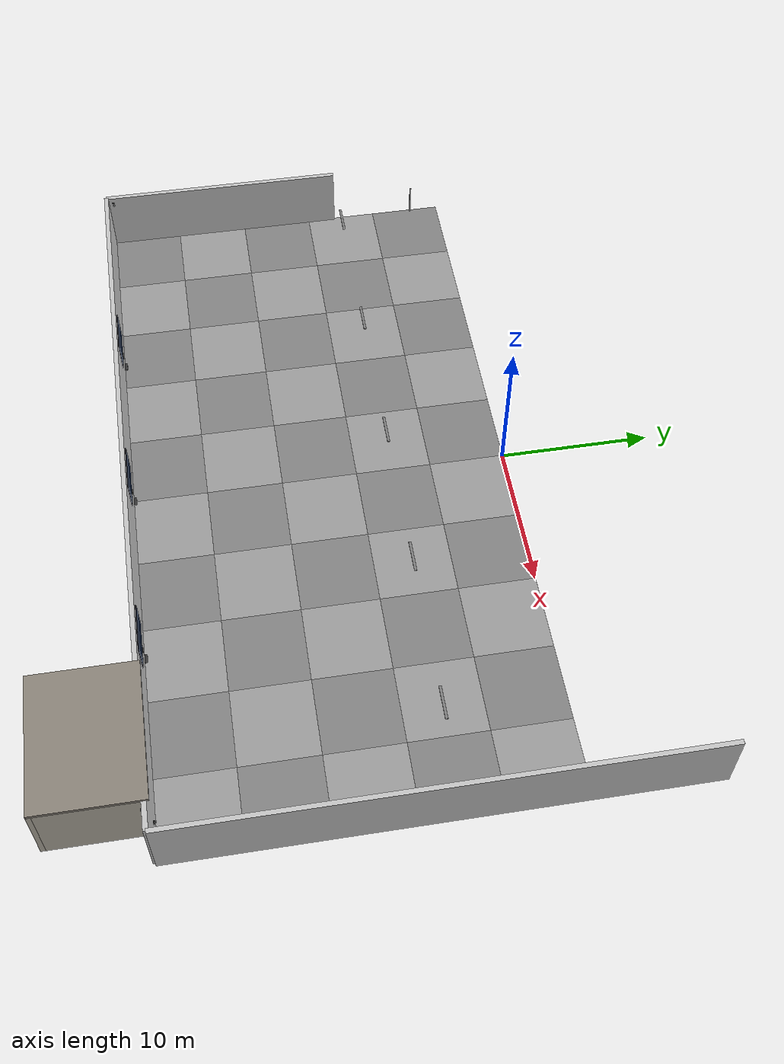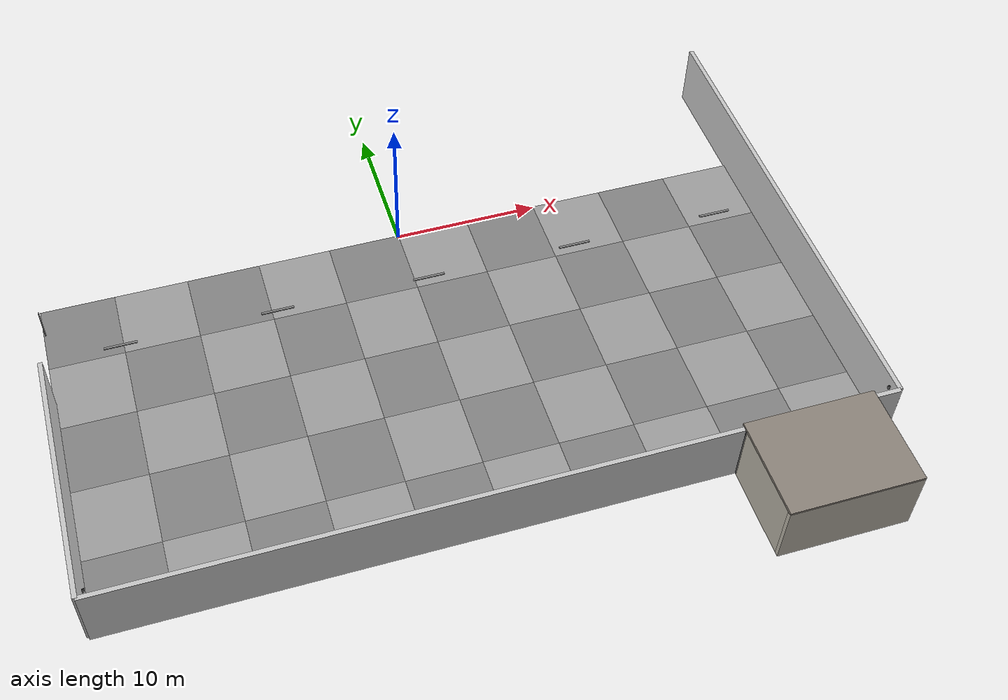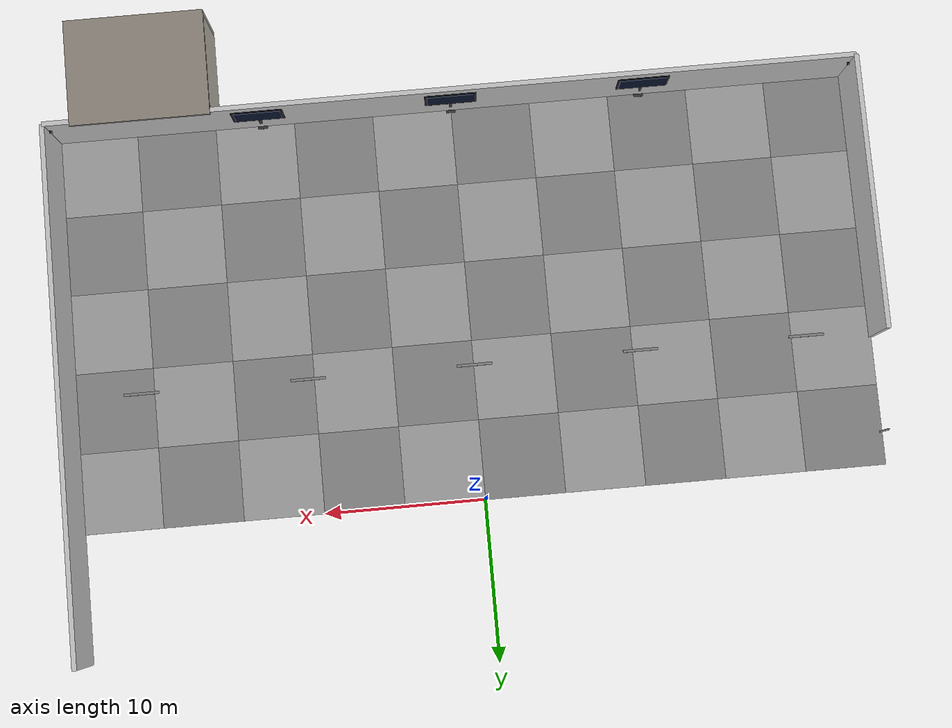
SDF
<sdf version="1.10">
 <world name="my_world">
  <model name="tile_0_0">
   <static>true</static>
   <pose>-22.5 -22.5 0.05 0 0 0</pose>
   <link name="link">
    <collision name="col">
     <geometry><box><size>5 5 0.1</size></box></geometry>
     <surface><friction><ode><mu>0.8</mu><mu2>0.8</mu2></ode></friction></surface>
    </collision>
    <visual name="vis">
     <geometry><box><size>5 5 0.1</size></box></geometry>
     <material><ambient>0.52 0.52 0.52 1</ambient><diffuse>0.52 0.52 0.52 1</diffuse></material>
    </visual>
   </link>
  </model>
  <model name="tile_0_1">
   <static>true</static>
   <pose>-22.5 -17.5 0.05 0 0 0</pose>
   <link name="link">
    <collision name="col">
     <geometry><box><size>5 5 0.1</size></box></geometry>
     <surface><friction><ode><mu>0.8</mu><mu2>0.8</mu2></ode></friction></surface>
    </collision>
    <visual name="vis">
     <geometry><box><size>5 5 0.1</size></box></geometry>
     <material><ambient>0.62 0.62 0.62 1</ambient><diffuse>0.62 0.62 0.62 1</diffuse></material>
    </visual>
   </link>
  </model>
  <model name="tile_0_2">
   <static>true</static>
   <pose>-22.5 -12.5 0.05 0 0 0</pose>
   <link name="link">
    <collision name="col">
     <geometry><box><size>5 5 0.1</size></box></geometry>
     <surface><friction><ode><mu>0.8</mu><mu2>0.8</mu2></ode></friction></surface>
    </collision>
    <visual name="vis">
     <geometry><box><size>5 5 0.1</size></box></geometry>
     <material><ambient>0.52 0.52 0.52 1</ambient><diffuse>0.52 0.52 0.52 1</diffuse></material>
    </visual>
   </link>
  </model>
  <model name="tile_0_3">
   <static>true</static>
   <pose>-22.5 -7.5 0.05 0 0 0</pose>
   <link name="link">
    <collision name="col">
     <geometry><box><size>5 5 0.1</size></box></geometry>
     <surface><friction><ode><mu>0.8</mu><mu2>0.8</mu2></ode></friction></surface>
    </collision>
    <visual name="vis">
     <geometry><box><size>5 5 0.1</size></box></geometry>
     <material><ambient>0.62 0.62 0.62 1</ambient><diffuse>0.62 0.62 0.62 1</diffuse></material>
    </visual>
   </link>
  </model>
  <model name="tile_0_4">
   <static>true</static>
   <pose>-22.5 -2.5 0.05 0 0 0</pose>
   <link name="link">
    <collision name="col">
     <geometry><box><size>5 5 0.1</size></box></geometry>
     <surface><friction><ode><mu>0.8</mu><mu2>0.8</mu2></ode></friction></surface>
    </collision>
    <visual name="vis">
     <geometry><box><size>5 5 0.1</size></box></geometry>
     <material><ambient>0.52 0.52 0.52 1</ambient><diffuse>0.52 0.52 0.52 1</diffuse></material>
    </visual>
   </link>
  </model>
  <model name="tile_1_0">
   <static>true</static>
   <pose>-17.5 -22.5 0.05 0 0 0</pose>
   <link name="link">
    <collision name="col">
     <geometry><box><size>5 5 0.1</size></box></geometry>
     <surface><friction><ode><mu>0.8</mu><mu2>0.8</mu2></ode></friction></surface>
    </collision>
    <visual name="vis">
     <geometry><box><size>5 5 0.1</size></box></geometry>
     <material><ambient>0.62 0.62 0.62 1</ambient><diffuse>0.62 0.62 0.62 1</diffuse></material>
    </visual>
   </link>
  </model>
  <model name="tile_1_1">
   <static>true</static>
   <pose>-17.5 -17.5 0.05 0 0 0</pose>
   <link name="link">
    <collision name="col">
     <geometry><box><size>5 5 0.1</size></box></geometry>
     <surface><friction><ode><mu>0.8</mu><mu2>0.8</mu2></ode></friction></surface>
    </collision>
    <visual name="vis">
     <geometry><box><size>5 5 0.1</size></box></geometry>
     <material><ambient>0.52 0.52 0.52 1</ambient><diffuse>0.52 0.52 0.52 1</diffuse></material>
    </visual>
   </link>
  </model>
  <model name="tile_1_2">
   <static>true</static>
   <pose>-17.5 -12.5 0.05 0 0 0</pose>
   <link name="link">
    <collision name="col">
     <geometry><box><size>5 5 0.1</size></box></geometry>
     <surface><friction><ode><mu>0.8</mu><mu2>0.8</mu2></ode></friction></surface>
    </collision>
    <visual name="vis">
     <geometry><box><size>5 5 0.1</size></box></geometry>
     <material><ambient>0.62 0.62 0.62 1</ambient><diffuse>0.62 0.62 0.62 1</diffuse></material>
    </visual>
   </link>
  </model>
  <model name="tile_1_3">
   <static>true</static>
   <pose>-17.5 -7.5 0.05 0 0 0</pose>
   <link name="link">
    <collision name="col">
     <geometry><box><size>5 5 0.1</size></box></geometry>
     <surface><friction><ode><mu>0.8</mu><mu2>0.8</mu2></ode></friction></surface>
    </collision>
    <visual name="vis">
     <geometry><box><size>5 5 0.1</size></box></geometry>
     <material><ambient>0.52 0.52 0.52 1</ambient><diffuse>0.52 0.52 0.52 1</diffuse></material>
    </visual>
   </link>
  </model>
  <model name="tile_1_4">
   <static>true</static>
   <pose>-17.5 -2.5 0.05 0 0 0</pose>
   <link name="link">
    <collision name="col">
     <geometry><box><size>5 5 0.1</size></box></geometry>
     <surface><friction><ode><mu>0.8</mu><mu2>0.8</mu2></ode></friction></surface>
    </collision>
    <visual name="vis">
     <geometry><box><size>5 5 0.1</size></box></geometry>
     <material><ambient>0.62 0.62 0.62 1</ambient><diffuse>0.62 0.62 0.62 1</diffuse></material>
    </visual>
   </link>
  </model>
  <model name="tile_2_0">
   <static>true</static>
   <pose>-12.5 -22.5 0.05 0 0 0</pose>
   <link name="link">
    <collision name="col">
     <geometry><box><size>5 5 0.1</size></box></geometry>
     <surface><friction><ode><mu>0.8</mu><mu2>0.8</mu2></ode></friction></surface>
    </collision>
    <visual name="vis">
     <geometry><box><size>5 5 0.1</size></box></geometry>
     <material><ambient>0.52 0.52 0.52 1</ambient><diffuse>0.52 0.52 0.52 1</diffuse></material>
    </visual>
   </link>
  </model>
  <model name="tile_2_1">
   <static>true</static>
   <pose>-12.5 -17.5 0.05 0 0 0</pose>
   <link name="link">
    <collision name="col">
     <geometry><box><size>5 5 0.1</size></box></geometry>
     <surface><friction><ode><mu>0.8</mu><mu2>0.8</mu2></ode></friction></surface>
    </collision>
    <visual name="vis">
     <geometry><box><size>5 5 0.1</size></box></geometry>
     <material><ambient>0.62 0.62 0.62 1</ambient><diffuse>0.62 0.62 0.62 1</diffuse></material>
    </visual>
   </link>
  </model>
  <model name="tile_2_2">
   <static>true</static>
   <pose>-12.5 -12.5 0.05 0 0 0</pose>
   <link name="link">
    <collision name="col">
     <geometry><box><size>5 5 0.1</size></box></geometry>
     <surface><friction><ode><mu>0.8</mu><mu2>0.8</mu2></ode></friction></surface>
    </collision>
    <visual name="vis">
     <geometry><box><size>5 5 0.1</size></box></geometry>
     <material><ambient>0.52 0.52 0.52 1</ambient><diffuse>0.52 0.52 0.52 1</diffuse></material>
    </visual>
   </link>
  </model>
  <model name="tile_2_3">
   <static>true</static>
   <pose>-12.5 -7.5 0.05 0 0 0</pose>
   <link name="link">
    <collision name="col">
     <geometry><box><size>5 5 0.1</size></box></geometry>
     <surface><friction><ode><mu>0.8</mu><mu2>0.8</mu2></ode></friction></surface>
    </collision>
    <visual name="vis">
     <geometry><box><size>5 5 0.1</size></box></geometry>
     <material><ambient>0.62 0.62 0.62 1</ambient><diffuse>0.62 0.62 0.62 1</diffuse></material>
    </visual>
   </link>
  </model>
  <model name="tile_2_4">
   <static>true</static>
   <pose>-12.5 -2.5 0.05 0 0 0</pose>
   <link name="link">
    <collision name="col">
     <geometry><box><size>5 5 0.1</size></box></geometry>
     <surface><friction><ode><mu>0.8</mu><mu2>0.8</mu2></ode></friction></surface>
    </collision>
    <visual name="vis">
     <geometry><box><size>5 5 0.1</size></box></geometry>
     <material><ambient>0.52 0.52 0.52 1</ambient><diffuse>0.52 0.52 0.52 1</diffuse></material>
    </visual>
   </link>
  </model>
  <model name="tile_3_0">
   <static>true</static>
   <pose>-7.5 -22.5 0.05 0 0 0</pose>
   <link name="link">
    <collision name="col">
     <geometry><box><size>5 5 0.1</size></box></geometry>
     <surface><friction><ode><mu>0.8</mu><mu2>0.8</mu2></ode></friction></surface>
    </collision>
    <visual name="vis">
     <geometry><box><size>5 5 0.1</size></box></geometry>
     <material><ambient>0.62 0.62 0.62 1</ambient><diffuse>0.62 0.62 0.62 1</diffuse></material>
    </visual>
   </link>
  </model>
  <model name="tile_3_1">
   <static>true</static>
   <pose>-7.5 -17.5 0.05 0 0 0</pose>
   <link name="link">
    <collision name="col">
     <geometry><box><size>5 5 0.1</size></box></geometry>
     <surface><friction><ode><mu>0.8</mu><mu2>0.8</mu2></ode></friction></surface>
    </collision>
    <visual name="vis">
     <geometry><box><size>5 5 0.1</size></box></geometry>
     <material><ambient>0.52 0.52 0.52 1</ambient><diffuse>0.52 0.52 0.52 1</diffuse></material>
    </visual>
   </link>
  </model>
  <model name="tile_3_2">
   <static>true</static>
   <pose>-7.5 -12.5 0.05 0 0 0</pose>
   <link name="link">
    <collision name="col">
     <geometry><box><size>5 5 0.1</size></box></geometry>
     <surface><friction><ode><mu>0.8</mu><mu2>0.8</mu2></ode></friction></surface>
    </collision>
    <visual name="vis">
     <geometry><box><size>5 5 0.1</size></box></geometry>
     <material><ambient>0.62 0.62 0.62 1</ambient><diffuse>0.62 0.62 0.62 1</diffuse></material>
    </visual>
   </link>
  </model>
  <model name="tile_3_3">
   <static>true</static>
   <pose>-7.5 -7.5 0.05 0 0 0</pose>
   <link name="link">
    <collision name="col">
     <geometry><box><size>5 5 0.1</size></box></geometry>
     <surface><friction><ode><mu>0.8</mu><mu2>0.8</mu2></ode></friction></surface>
    </collision>
    <visual name="vis">
     <geometry><box><size>5 5 0.1</size></box></geometry>
     <material><ambient>0.52 0.52 0.52 1</ambient><diffuse>0.52 0.52 0.52 1</diffuse></material>
    </visual>
   </link>
  </model>
  <model name="tile_3_4">
   <static>true</static>
   <pose>-7.5 -2.5 0.05 0 0 0</pose>
   <link name="link">
    <collision name="col">
     <geometry><box><size>5 5 0.1</size></box></geometry>
     <surface><friction><ode><mu>0.8</mu><mu2>0.8</mu2></ode></friction></surface>
    </collision>
    <visual name="vis">
     <geometry><box><size>5 5 0.1</size></box></geometry>
     <material><ambient>0.62 0.62 0.62 1</ambient><diffuse>0.62 0.62 0.62 1</diffuse></material>
    </visual>
   </link>
  </model>
  <model name="tile_4_0">
   <static>true</static>
   <pose>-2.5 -22.5 0.05 0 0 0</pose>
   <link name="link">
    <collision name="col">
     <geometry><box><size>5 5 0.1</size></box></geometry>
     <surface><friction><ode><mu>0.8</mu><mu2>0.8</mu2></ode></friction></surface>
    </collision>
    <visual name="vis">
     <geometry><box><size>5 5 0.1</size></box></geometry>
     <material><ambient>0.52 0.52 0.52 1</ambient><diffuse>0.52 0.52 0.52 1</diffuse></material>
    </visual>
   </link>
  </model>
  <model name="tile_4_1">
   <static>true</static>
   <pose>-2.5 -17.5 0.05 0 0 0</pose>
   <link name="link">
    <collision name="col">
     <geometry><box><size>5 5 0.1</size></box></geometry>
     <surface><friction><ode><mu>0.8</mu><mu2>0.8</mu2></ode></friction></surface>
    </collision>
    <visual name="vis">
     <geometry><box><size>5 5 0.1</size></box></geometry>
     <material><ambient>0.62 0.62 0.62 1</ambient><diffuse>0.62 0.62 0.62 1</diffuse></material>
    </visual>
   </link>
  </model>
  <model name="tile_4_2">
   <static>true</static>
   <pose>-2.5 -12.5 0.05 0 0 0</pose>
   <link name="link">
    <collision name="col">
     <geometry><box><size>5 5 0.1</size></box></geometry>
     <surface><friction><ode><mu>0.8</mu><mu2>0.8</mu2></ode></friction></surface>
    </collision>
    <visual name="vis">
     <geometry><box><size>5 5 0.1</size></box></geometry>
     <material><ambient>0.52 0.52 0.52 1</ambient><diffuse>0.52 0.52 0.52 1</diffuse></material>
    </visual>
   </link>
  </model>
  <model name="tile_4_3">
   <static>true</static>
   <pose>-2.5 -7.5 0.05 0 0 0</pose>
   <link name="link">
    <collision name="col">
     <geometry><box><size>5 5 0.1</size></box></geometry>
     <surface><friction><ode><mu>0.8</mu><mu2>0.8</mu2></ode></friction></surface>
    </collision>
    <visual name="vis">
     <geometry><box><size>5 5 0.1</size></box></geometry>
     <material><ambient>0.62 0.62 0.62 1</ambient><diffuse>0.62 0.62 0.62 1</diffuse></material>
    </visual>
   </link>
  </model>
  <model name="tile_4_4">
   <static>true</static>
   <pose>-2.5 -2.5 0.05 0 0 0</pose>
   <link name="link">
    <collision name="col">
     <geometry><box><size>5 5 0.1</size></box></geometry>
     <surface><friction><ode><mu>0.8</mu><mu2>0.8</mu2></ode></friction></surface>
    </collision>
    <visual name="vis">
     <geometry><box><size>5 5 0.1</size></box></geometry>
     <material><ambient>0.52 0.52 0.52 1</ambient><diffuse>0.52 0.52 0.52 1</diffuse></material>
    </visual>
   </link>
  </model>
  <model name="tile_5_0">
   <static>true</static>
   <pose>2.5 -22.5 0.05 0 0 0</pose>
   <link name="link">
    <collision name="col">
     <geometry><box><size>5 5 0.1</size></box></geometry>
     <surface><friction><ode><mu>0.8</mu><mu2>0.8</mu2></ode></friction></surface>
    </collision>
    <visual name="vis">
     <geometry><box><size>5 5 0.1</size></box></geometry>
     <material><ambient>0.62 0.62 0.62 1</ambient><diffuse>0.62 0.62 0.62 1</diffuse></material>
    </visual>
   </link>
  </model>
  <model name="tile_5_1">
   <static>true</static>
   <pose>2.5 -17.5 0.05 0 0 0</pose>
   <link name="link">
    <collision name="col">
     <geometry><box><size>5 5 0.1</size></box></geometry>
     <surface><friction><ode><mu>0.8</mu><mu2>0.8</mu2></ode></friction></surface>
    </collision>
    <visual name="vis">
     <geometry><box><size>5 5 0.1</size></box></geometry>
     <material><ambient>0.52 0.52 0.52 1</ambient><diffuse>0.52 0.52 0.52 1</diffuse></material>
    </visual>
   </link>
  </model>
  <model name="tile_5_2">
   <static>true</static>
   <pose>2.5 -12.5 0.05 0 0 0</pose>
   <link name="link">
    <collision name="col">
     <geometry><box><size>5 5 0.1</size></box></geometry>
     <surface><friction><ode><mu>0.8</mu><mu2>0.8</mu2></ode></friction></surface>
    </collision>
    <visual name="vis">
     <geometry><box><size>5 5 0.1</size></box></geometry>
     <material><ambient>0.62 0.62 0.62 1</ambient><diffuse>0.62 0.62 0.62 1</diffuse></material>
    </visual>
   </link>
  </model>
  <model name="tile_5_3">
   <static>true</static>
   <pose>2.5 -7.5 0.05 0 0 0</pose>
   <link name="link">
    <collision name="col">
     <geometry><box><size>5 5 0.1</size></box></geometry>
     <surface><friction><ode><mu>0.8</mu><mu2>0.8</mu2></ode></friction></surface>
    </collision>
    <visual name="vis">
     <geometry><box><size>5 5 0.1</size></box></geometry>
     <material><ambient>0.52 0.52 0.52 1</ambient><diffuse>0.52 0.52 0.52 1</diffuse></material>
    </visual>
   </link>
  </model>
  <model name="tile_5_4">
   <static>true</static>
   <pose>2.5 -2.5 0.05 0 0 0</pose>
   <link name="link">
    <collision name="col">
     <geometry><box><size>5 5 0.1</size></box></geometry>
     <surface><friction><ode><mu>0.8</mu><mu2>0.8</mu2></ode></friction></surface>
    </collision>
    <visual name="vis">
     <geometry><box><size>5 5 0.1</size></box></geometry>
     <material><ambient>0.62 0.62 0.62 1</ambient><diffuse>0.62 0.62 0.62 1</diffuse></material>
    </visual>
   </link>
  </model>
  <model name="tile_6_0">
   <static>true</static>
   <pose>7.5 -22.5 0.05 0 0 0</pose>
   <link name="link">
    <collision name="col">
     <geometry><box><size>5 5 0.1</size></box></geometry>
     <surface><friction><ode><mu>0.8</mu><mu2>0.8</mu2></ode></friction></surface>
    </collision>
    <visual name="vis">
     <geometry><box><size>5 5 0.1</size></box></geometry>
     <material><ambient>0.52 0.52 0.52 1</ambient><diffuse>0.52 0.52 0.52 1</diffuse></material>
    </visual>
   </link>
  </model>
  <model name="tile_6_1">
   <static>true</static>
   <pose>7.5 -17.5 0.05 0 0 0</pose>
   <link name="link">
    <collision name="col">
     <geometry><box><size>5 5 0.1</size></box></geometry>
     <surface><friction><ode><mu>0.8</mu><mu2>0.8</mu2></ode></friction></surface>
    </collision>
    <visual name="vis">
     <geometry><box><size>5 5 0.1</size></box></geometry>
     <material><ambient>0.62 0.62 0.62 1</ambient><diffuse>0.62 0.62 0.62 1</diffuse></material>
    </visual>
   </link>
  </model>
  <model name="tile_6_2">
   <static>true</static>
   <pose>7.5 -12.5 0.05 0 0 0</pose>
   <link name="link">
    <collision name="col">
     <geometry><box><size>5 5 0.1</size></box></geometry>
     <surface><friction><ode><mu>0.8</mu><mu2>0.8</mu2></ode></friction></surface>
    </collision>
    <visual name="vis">
     <geometry><box><size>5 5 0.1</size></box></geometry>
     <material><ambient>0.52 0.52 0.52 1</ambient><diffuse>0.52 0.52 0.52 1</diffuse></material>
    </visual>
   </link>
  </model>
  <model name="tile_6_3">
   <static>true</static>
   <pose>7.5 -7.5 0.05 0 0 0</pose>
   <link name="link">
    <collision name="col">
     <geometry><box><size>5 5 0.1</size></box></geometry>
     <surface><friction><ode><mu>0.8</mu><mu2>0.8</mu2></ode></friction></surface>
    </collision>
    <visual name="vis">
     <geometry><box><size>5 5 0.1</size></box></geometry>
     <material><ambient>0.62 0.62 0.62 1</ambient><diffuse>0.62 0.62 0.62 1</diffuse></material>
    </visual>
   </link>
  </model>
  <model name="tile_6_4">
   <static>true</static>
   <pose>7.5 -2.5 0.05 0 0 0</pose>
   <link name="link">
    <collision name="col">
     <geometry><box><size>5 5 0.1</size></box></geometry>
     <surface><friction><ode><mu>0.8</mu><mu2>0.8</mu2></ode></friction></surface>
    </collision>
    <visual name="vis">
     <geometry><box><size>5 5 0.1</size></box></geometry>
     <material><ambient>0.52 0.52 0.52 1</ambient><diffuse>0.52 0.52 0.52 1</diffuse></material>
    </visual>
   </link>
  </model>
  <model name="tile_7_0">
   <static>true</static>
   <pose>12.5 -22.5 0.05 0 0 0</pose>
   <link name="link">
    <collision name="col">
     <geometry><box><size>5 5 0.1</size></box></geometry>
     <surface><friction><ode><mu>0.8</mu><mu2>0.8</mu2></ode></friction></surface>
    </collision>
    <visual name="vis">
     <geometry><box><size>5 5 0.1</size></box></geometry>
     <material><ambient>0.62 0.62 0.62 1</ambient><diffuse>0.62 0.62 0.62 1</diffuse></material>
    </visual>
   </link>
  </model>
  <model name="tile_7_1">
   <static>true</static>
   <pose>12.5 -17.5 0.05 0 0 0</pose>
   <link name="link">
    <collision name="col">
     <geometry><box><size>5 5 0.1</size></box></geometry>
     <surface><friction><ode><mu>0.8</mu><mu2>0.8</mu2></ode></friction></surface>
    </collision>
    <visual name="vis">
     <geometry><box><size>5 5 0.1</size></box></geometry>
     <material><ambient>0.52 0.52 0.52 1</ambient><diffuse>0.52 0.52 0.52 1</diffuse></material>
    </visual>
   </link>
  </model>
  <model name="tile_7_2">
   <static>true</static>
   <pose>12.5 -12.5 0.05 0 0 0</pose>
   <link name="link">
    <collision name="col">
     <geometry><box><size>5 5 0.1</size></box></geometry>
     <surface><friction><ode><mu>0.8</mu><mu2>0.8</mu2></ode></friction></surface>
    </collision>
    <visual name="vis">
     <geometry><box><size>5 5 0.1</size></box></geometry>
     <material><ambient>0.62 0.62 0.62 1</ambient><diffuse>0.62 0.62 0.62 1</diffuse></material>
    </visual>
   </link>
  </model>
  <model name="tile_7_3">
   <static>true</static>
   <pose>12.5 -7.5 0.05 0 0 0</pose>
   <link name="link">
    <collision name="col">
     <geometry><box><size>5 5 0.1</size></box></geometry>
     <surface><friction><ode><mu>0.8</mu><mu2>0.8</mu2></ode></friction></surface>
    </collision>
    <visual name="vis">
     <geometry><box><size>5 5 0.1</size></box></geometry>
     <material><ambient>0.52 0.52 0.52 1</ambient><diffuse>0.52 0.52 0.52 1</diffuse></material>
    </visual>
   </link>
  </model>
  <model name="tile_7_4">
   <static>true</static>
   <pose>12.5 -2.5 0.05 0 0 0</pose>
   <link name="link">
    <collision name="col">
     <geometry><box><size>5 5 0.1</size></box></geometry>
     <surface><friction><ode><mu>0.8</mu><mu2>0.8</mu2></ode></friction></surface>
    </collision>
    <visual name="vis">
     <geometry><box><size>5 5 0.1</size></box></geometry>
     <material><ambient>0.62 0.62 0.62 1</ambient><diffuse>0.62 0.62 0.62 1</diffuse></material>
    </visual>
   </link>
  </model>
  <model name="tile_8_0">
   <static>true</static>
   <pose>17.5 -22.5 0.05 0 0 0</pose>
   <link name="link">
    <collision name="col">
     <geometry><box><size>5 5 0.1</size></box></geometry>
     <surface><friction><ode><mu>0.8</mu><mu2>0.8</mu2></ode></friction></surface>
    </collision>
    <visual name="vis">
     <geometry><box><size>5 5 0.1</size></box></geometry>
     <material><ambient>0.52 0.52 0.52 1</ambient><diffuse>0.52 0.52 0.52 1</diffuse></material>
    </visual>
   </link>
  </model>
  <model name="tile_8_1">
   <static>true</static>
   <pose>17.5 -17.5 0.05 0 0 0</pose>
   <link name="link">
    <collision name="col">
     <geometry><box><size>5 5 0.1</size></box></geometry>
     <surface><friction><ode><mu>0.8</mu><mu2>0.8</mu2></ode></friction></surface>
    </collision>
    <visual name="vis">
     <geometry><box><size>5 5 0.1</size></box></geometry>
     <material><ambient>0.62 0.62 0.62 1</ambient><diffuse>0.62 0.62 0.62 1</diffuse></material>
    </visual>
   </link>
  </model>
  <model name="tile_8_2">
   <static>true</static>
   <pose>17.5 -12.5 0.05 0 0 0</pose>
   <link name="link">
    <collision name="col">
     <geometry><box><size>5 5 0.1</size></box></geometry>
     <surface><friction><ode><mu>0.8</mu><mu2>0.8</mu2></ode></friction></surface>
    </collision>
    <visual name="vis">
     <geometry><box><size>5 5 0.1</size></box></geometry>
     <material><ambient>0.52 0.52 0.52 1</ambient><diffuse>0.52 0.52 0.52 1</diffuse></material>
    </visual>
   </link>
  </model>
  <model name="tile_8_3">
   <static>true</static>
   <pose>17.5 -7.5 0.05 0 0 0</pose>
   <link name="link">
    <collision name="col">
     <geometry><box><size>5 5 0.1</size></box></geometry>
     <surface><friction><ode><mu>0.8</mu><mu2>0.8</mu2></ode></friction></surface>
    </collision>
    <visual name="vis">
     <geometry><box><size>5 5 0.1</size></box></geometry>
     <material><ambient>0.62 0.62 0.62 1</ambient><diffuse>0.62 0.62 0.62 1</diffuse></material>
    </visual>
   </link>
  </model>
  <model name="tile_8_4">
   <static>true</static>
   <pose>17.5 -2.5 0.05 0 0 0</pose>
   <link name="link">
    <collision name="col">
     <geometry><box><size>5 5 0.1</size></box></geometry>
     <surface><friction><ode><mu>0.8</mu><mu2>0.8</mu2></ode></friction></surface>
    </collision>
    <visual name="vis">
     <geometry><box><size>5 5 0.1</size></box></geometry>
     <material><ambient>0.52 0.52 0.52 1</ambient><diffuse>0.52 0.52 0.52 1</diffuse></material>
    </visual>
   </link>
  </model>
  <model name="tile_9_0">
   <static>true</static>
   <pose>22.5 -22.5 0.05 0 0 0</pose>
   <link name="link">
    <collision name="col">
     <geometry><box><size>5 5 0.1</size></box></geometry>
     <surface><friction><ode><mu>0.8</mu><mu2>0.8</mu2></ode></friction></surface>
    </collision>
    <visual name="vis">
     <geometry><box><size>5 5 0.1</size></box></geometry>
     <material><ambient>0.62 0.62 0.62 1</ambient><diffuse>0.62 0.62 0.62 1</diffuse></material>
    </visual>
   </link>
  </model>
  <model name="tile_9_1">
   <static>true</static>
   <pose>22.5 -17.5 0.05 0 0 0</pose>
   <link name="link">
    <collision name="col">
     <geometry><box><size>5 5 0.1</size></box></geometry>
     <surface><friction><ode><mu>0.8</mu><mu2>0.8</mu2></ode></friction></surface>
    </collision>
    <visual name="vis">
     <geometry><box><size>5 5 0.1</size></box></geometry>
     <material><ambient>0.52 0.52 0.52 1</ambient><diffuse>0.52 0.52 0.52 1</diffuse></material>
    </visual>
   </link>
  </model>
  <model name="tile_9_2">
   <static>true</static>
   <pose>22.5 -12.5 0.05 0 0 0</pose>
   <link name="link">
    <collision name="col">
     <geometry><box><size>5 5 0.1</size></box></geometry>
     <surface><friction><ode><mu>0.8</mu><mu2>0.8</mu2></ode></friction></surface>
    </collision>
    <visual name="vis">
     <geometry><box><size>5 5 0.1</size></box></geometry>
     <material><ambient>0.62 0.62 0.62 1</ambient><diffuse>0.62 0.62 0.62 1</diffuse></material>
    </visual>
   </link>
  </model>
  <model name="tile_9_3">
   <static>true</static>
   <pose>22.5 -7.5 0.05 0 0 0</pose>
   <link name="link">
    <collision name="col">
     <geometry><box><size>5 5 0.1</size></box></geometry>
     <surface><friction><ode><mu>0.8</mu><mu2>0.8</mu2></ode></friction></surface>
    </collision>
    <visual name="vis">
     <geometry><box><size>5 5 0.1</size></box></geometry>
     <material><ambient>0.52 0.52 0.52 1</ambient><diffuse>0.52 0.52 0.52 1</diffuse></material>
    </visual>
   </link>
  </model>
  <model name="tile_9_4">
   <static>true</static>
   <pose>22.5 -2.5 0.05 0 0 0</pose>
   <link name="link">
    <collision name="col">
     <geometry><box><size>5 5 0.1</size></box></geometry>
     <surface><friction><ode><mu>0.8</mu><mu2>0.8</mu2></ode></friction></surface>
    </collision>
    <visual name="vis">
     <geometry><box><size>5 5 0.1</size></box></geometry>
     <material><ambient>0.62 0.62 0.62 1</ambient><diffuse>0.62 0.62 0.62 1</diffuse></material>
    </visual>
   </link>
  </model>
  <model name="wall_south">
   <static>true</static>
   <pose>0 -25 2.25 0 0 0</pose>
   <link name="link">
    <collision name="col"><geometry><box><size>50 0.3 4.5</size></box></geometry></collision>
    <visual name="vis">
     <geometry><box><size>50 0.3 4.5</size></box></geometry>
     <material><ambient>0.78 0.78 0.78 1</ambient><diffuse>0.78 0.78 0.78 1</diffuse></material>
    </visual>
   </link>
  </model>
  <model name="wall_east_s">
   <static>true</static>
   <pose>25 -8.525 2.25 0 0 0</pose>
   <link name="link">
    <collision name="col"><geometry><box><size>0.3 32.95 4.5</size></box></geometry></collision>
    <visual name="vis">
     <geometry><box><size>0.3 32.95 4.5</size></box></geometry>
     <material><ambient>0.78 0.78 0.78 1</ambient><diffuse>0.78 0.78 0.78 1</diffuse></material>
    </visual>
   </link>
  </model>
  <model name="wall_west_s">
   <static>true</static>
   <pose>-25 -16.5 2.25 0 0 0</pose>
   <link name="link">
    <collision name="col"><geometry><box><size>0.3 17 4.5</size></box></geometry></collision>
    <visual name="vis">
     <geometry><box><size>0.3 17 4.5</size></box></geometry>
     <material><ambient>0.78 0.78 0.78 1</ambient><diffuse>0.78 0.78 0.78 1</diffuse></material>
    </visual>
   </link>
  </model>
  <model name="exit_west_frame_l">
   <static>true</static>
   <pose>-24.87 -2.05 1.2 0 0 0</pose>
   <link name="link">
    <collision name="col"><geometry><box><size>0.06 0.1 2.4</size></box></geometry></collision>
    <visual name="vis">
     <geometry><box><size>0.06 0.1 2.4</size></box></geometry>
     <material><ambient>0.6 0.6 0.6 1</ambient><diffuse>0.6 0.6 0.6 1</diffuse></material>
    </visual>
   </link>
  </model>
  <model name="fid_1_frame">
   <static>true</static>
   <pose>-12 -24.85 2.8 0 0 0</pose>
   <link name="link">
    <collision name="col"><geometry><box><size>3.2 0.1 2.0</size></box></geometry></collision>
    <visual name="vis">
     <geometry><box><size>3.2 0.1 2.0</size></box></geometry>
     <material><ambient>0.15 0.15 0.18 1</ambient><diffuse>0.15 0.15 0.18 1</diffuse></material>
    </visual>
   </link>
  </model>
  <model name="fid_1_screen">
   <static>true</static>
   <pose>-12 -24.79 2.8 0 0 0</pose>
   <link name="link">
    <visual name="vis">
     <geometry><box><size>2.9 0.04 1.7</size></box></geometry>
     <material>
      <ambient>0.03 0.08 0.18 1</ambient>
      <diffuse>0.03 0.08 0.18 1</diffuse>
      <emissive>0.04 0.12 0.30 1</emissive>
     </material>
    </visual>
   </link>
  </model>
  <model name="fid_1_stand">
   <static>true</static>
   <pose>-12 -24.87 1.55 0 0 0</pose>
   <link name="link">
    <collision name="col"><geometry><box><size>0.15 0.15 1.1</size></box></geometry></collision>
    <visual name="vis">
     <geometry><box><size>0.15 0.15 1.1</size></box></geometry>
     <material><ambient>0.25 0.25 0.25 1</ambient><diffuse>0.25 0.25 0.25 1</diffuse></material>
    </visual>
   </link>
  </model>
  <model name="fid_1_base">
   <static>true</static>
   <pose>-12 -24.87 0.06 0 0 0</pose>
   <link name="link">
    <collision name="col"><geometry><box><size>0.6 0.4 0.12</size></box></geometry></collision>
    <visual name="vis">
     <geometry><box><size>0.6 0.4 0.12</size></box></geometry>
     <material><ambient>0.2 0.2 0.2 1</ambient><diffuse>0.2 0.2 0.2 1</diffuse></material>
    </visual>
   </link>
  </model>
  <model name="fid_2_frame">
   <static>true</static>
   <pose>0 -24.85 2.8 0 0 0</pose>
   <link name="link">
    <collision name="col"><geometry><box><size>3.2 0.1 2.0</size></box></geometry></collision>
    <visual name="vis">
     <geometry><box><size>3.2 0.1 2.0</size></box></geometry>
     <material><ambient>0.15 0.15 0.18 1</ambient><diffuse>0.15 0.15 0.18 1</diffuse></material>
    </visual>
   </link>
  </model>
  <model name="fid_2_screen">
   <static>true</static>
   <pose>0 -24.79 2.8 0 0 0</pose>
   <link name="link">
    <visual name="vis">
     <geometry><box><size>2.9 0.04 1.7</size></box></geometry>
     <material>
      <ambient>0.03 0.08 0.18 1</ambient>
      <diffuse>0.03 0.08 0.18 1</diffuse>
      <emissive>0.04 0.12 0.30 1</emissive>
     </material>
    </visual>
   </link>
  </model>
  <model name="fid_2_stand">
   <static>true</static>
   <pose>0 -24.87 1.55 0 0 0</pose>
   <link name="link">
    <collision name="col"><geometry><box><size>0.15 0.15 1.1</size></box></geometry></collision>
    <visual name="vis">
     <geometry><box><size>0.15 0.15 1.1</size></box></geometry>
     <material><ambient>0.25 0.25 0.25 1</ambient><diffuse>0.25 0.25 0.25 1</diffuse></material>
    </visual>
   </link>
  </model>
  <model name="fid_2_base">
   <static>true</static>
   <pose>0 -24.87 0.06 0 0 0</pose>
   <link name="link">
    <collision name="col"><geometry><box><size>0.6 0.4 0.12</size></box></geometry></collision>
    <visual name="vis">
     <geometry><box><size>0.6 0.4 0.12</size></box></geometry>
     <material><ambient>0.2 0.2 0.2 1</ambient><diffuse>0.2 0.2 0.2 1</diffuse></material>
    </visual>
   </link>
  </model>
  <model name="fid_3_frame">
   <static>true</static>
   <pose>12 -24.85 2.8 0 0 0</pose>
   <link name="link">
    <collision name="col"><geometry><box><size>3.2 0.1 2.0</size></box></geometry></collision>
    <visual name="vis">
     <geometry><box><size>3.2 0.1 2.0</size></box></geometry>
     <material><ambient>0.15 0.15 0.18 1</ambient><diffuse>0.15 0.15 0.18 1</diffuse></material>
    </visual>
   </link>
  </model>
  <model name="fid_3_screen">
   <static>true</static>
   <pose>12 -24.79 2.8 0 0 0</pose>
   <link name="link">
    <visual name="vis">
     <geometry><box><size>2.9 0.04 1.7</size></box></geometry>
     <material>
      <ambient>0.03 0.08 0.18 1</ambient>
      <diffuse>0.03 0.08 0.18 1</diffuse>
      <emissive>0.04 0.12 0.30 1</emissive>
     </material>
    </visual>
   </link>
  </model>
  <model name="fid_3_stand">
   <static>true</static>
   <pose>12 -24.87 1.55 0 0 0</pose>
   <link name="link">
    <collision name="col"><geometry><box><size>0.15 0.15 1.1</size></box></geometry></collision>
    <visual name="vis">
     <geometry><box><size>0.15 0.15 1.1</size></box></geometry>
     <material><ambient>0.25 0.25 0.25 1</ambient><diffuse>0.25 0.25 0.25 1</diffuse></material>
    </visual>
   </link>
  </model>
  <model name="fid_3_base">
   <static>true</static>
   <pose>12 -24.87 0.06 0 0 0</pose>
   <link name="link">
    <collision name="col"><geometry><box><size>0.6 0.4 0.12</size></box></geometry></collision>
    <visual name="vis">
     <geometry><box><size>0.6 0.4 0.12</size></box></geometry>
     <material><ambient>0.2 0.2 0.2 1</ambient><diffuse>0.2 0.2 0.2 1</diffuse></material>
    </visual>
   </link>
  </model>
  <model name="lamp_a_n20_strip">
   <static>true</static>
   <pose>-20 -8 4.42 0 0 0</pose>
   <link name="link">
    <visual name="strip">
     <geometry><box><size>2.0 0.12 0.04</size></box></geometry>
     <material>
      <ambient>0.95 0.95 0.88 1</ambient>
      <diffuse>0.95 0.95 0.88 1</diffuse>
      <emissive>0.35 0.35 0.30 1</emissive>
     </material>
    </visual>
    <visual name="housing">
     <pose>0 0 0.03 0 0 0</pose>
     <geometry><box><size>2.1 0.16 0.06</size></box></geometry>
     <material><ambient>0.5 0.5 0.5 1</ambient><diffuse>0.5 0.5 0.5 1</diffuse></material>
    </visual>
   </link>
  </model>
  <model name="lamp_a_n10_strip">
   <static>true</static>
   <pose>-10 -8 4.42 0 0 0</pose>
   <link name="link">
    <visual name="strip">
     <geometry><box><size>2.0 0.12 0.04</size></box></geometry>
     <material>
      <ambient>0.95 0.95 0.88 1</ambient>
      <diffuse>0.95 0.95 0.88 1</diffuse>
      <emissive>0.35 0.35 0.30 1</emissive>
     </material>
    </visual>
    <visual name="housing">
     <pose>0 0 0.03 0 0 0</pose>
     <geometry><box><size>2.1 0.16 0.06</size></box></geometry>
     <material><ambient>0.5 0.5 0.5 1</ambient><diffuse>0.5 0.5 0.5 1</diffuse></material>
    </visual>
   </link>
  </model>
  <model name="lamp_a_0_strip">
   <static>true</static>
   <pose>0 -8 4.42 0 0 0</pose>
   <link name="link">
    <visual name="strip">
     <geometry><box><size>2.0 0.12 0.04</size></box></geometry>
     <material>
      <ambient>0.95 0.95 0.88 1</ambient>
      <diffuse>0.95 0.95 0.88 1</diffuse>
      <emissive>0.35 0.35 0.30 1</emissive>
     </material>
    </visual>
    <visual name="housing">
     <pose>0 0 0.03 0 0 0</pose>
     <geometry><box><size>2.1 0.16 0.06</size></box></geometry>
     <material><ambient>0.5 0.5 0.5 1</ambient><diffuse>0.5 0.5 0.5 1</diffuse></material>
    </visual>
   </link>
  </model>
  <model name="lamp_a_10_strip">
   <static>true</static>
   <pose>10 -8 4.42 0 0 0</pose>
   <link name="link">
    <visual name="strip">
     <geometry><box><size>2.0 0.12 0.04</size></box></geometry>
     <material>
      <ambient>0.95 0.95 0.88 1</ambient>
      <diffuse>0.95 0.95 0.88 1</diffuse>
      <emissive>0.35 0.35 0.30 1</emissive>
     </material>
    </visual>
    <visual name="housing">
     <pose>0 0 0.03 0 0 0</pose>
     <geometry><box><size>2.1 0.16 0.06</size></box></geometry>
     <material><ambient>0.5 0.5 0.5 1</ambient><diffuse>0.5 0.5 0.5 1</diffuse></material>
    </visual>
   </link>
  </model>
  <model name="lamp_a_20_strip">
   <static>true</static>
   <pose>20 -8 4.42 0 0 0</pose>
   <link name="link">
    <visual name="strip">
     <geometry><box><size>2.0 0.12 0.04</size></box></geometry>
     <material>
      <ambient>0.95 0.95 0.88 1</ambient>
      <diffuse>0.95 0.95 0.88 1</diffuse>
      <emissive>0.35 0.35 0.30 1</emissive>
     </material>
    </visual>
    <visual name="housing">
     <pose>0 0 0.03 0 0 0</pose>
     <geometry><box><size>2.1 0.16 0.06</size></box></geometry>
     <material><ambient>0.5 0.5 0.5 1</ambient><diffuse>0.5 0.5 0.5 1</diffuse></material>
    </visual>
   </link>
  </model>
  <model name="garage_wall_east">
   <static>true</static>
   <pose>23.15 -28 2.25 0 0 0</pose>
   <link name="link">
    <collision name="col"><geometry><box><size>0.3 6 4.5</size></box></geometry></collision>
    <visual name="vis">
     <geometry><box><size>0.3 6 4.5</size></box></geometry>
     <material><ambient>0.72 0.70 0.65 1</ambient><diffuse>0.72 0.70 0.65 1</diffuse></material>
    </visual>
   </link>
  </model>
  <model name="garage_wall_west">
   <static>true</static>
   <pose>14.85 -28 2.25 0 0 0</pose>
   <link name="link">
    <collision name="col"><geometry><box><size>0.3 6 4.5</size></box></geometry></collision>
    <visual name="vis">
     <geometry><box><size>0.3 6 4.5</size></box></geometry>
     <material><ambient>0.72 0.70 0.65 1</ambient><diffuse>0.72 0.70 0.65 1</diffuse></material>
    </visual>
   </link>
  </model>
  <model name="garage_wall_south">
   <static>true</static>
   <pose>19 -31.15 2.25 0 0 0</pose>
   <link name="link">
    <collision name="col"><geometry><box><size>8.6 0.3 4.5</size></box></geometry></collision>
    <visual name="vis">
     <geometry><box><size>8.6 0.3 4.5</size></box></geometry>
     <material><ambient>0.72 0.70 0.65 1</ambient><diffuse>0.72 0.70 0.65 1</diffuse></material>
    </visual>
   </link>
  </model>
  <model name="garage_roof">
   <static>true</static>
   <pose>19 -28 4.55 0 0 0</pose>
   <link name="link">
    <collision name="col"><geometry><box><size>8.6 6.6 0.2</size></box></geometry></collision>
    <visual name="vis">
     <geometry><box><size>8.6 6.6 0.2</size></box></geometry>
     <material><ambient>0.55 0.52 0.48 1</ambient><diffuse>0.55 0.52 0.48 1</diffuse></material>
    </visual>
   </link>
  </model>
  <model name="garage_floor">
   <static>true</static>
   <pose>19 -28 0.05 0 0 0</pose>
   <link name="link">
    <collision name="col"><geometry><box><size>8.3 5.7 0.1</size></box></geometry></collision>
    <visual name="vis">
     <geometry><box><size>8.3 5.7 0.1</size></box></geometry>
     <material><ambient>0.42 0.42 0.42 1</ambient><diffuse>0.42 0.42 0.42 1</diffuse></material>
    </visual>
   </link>
  </model>
  <model name="garage_door_frame_l">
   <static>true</static>
   <pose>14.85 -25.15 2.25 0 0 0</pose>
   <link name="link">
    <collision name="col"><geometry><box><size>0.3 0.3 4.5</size></box></geometry></collision>
    <visual name="vis">
     <geometry><box><size>0.3 0.3 4.5</size></box></geometry>
     <material><ambient>0.3 0.3 0.3 1</ambient><diffuse>0.3 0.3 0.3 1</diffuse></material>
    </visual>
   </link>
  </model>
  <model name="garage_door_frame_r">
   <static>true</static>
   <pose>23.15 -25.15 2.25 0 0 0</pose>
   <link name="link">
    <collision name="col"><geometry><box><size>0.3 0.3 4.5</size></box></geometry></collision>
    <visual name="vis">
     <geometry><box><size>0.3 0.3 4.5</size></box></geometry>
     <material><ambient>0.3 0.3 0.3 1</ambient><diffuse>0.3 0.3 0.3 1</diffuse></material>
    </visual>
   </link>
  </model>
  <model name="garage_door_frame_t">
   <static>true</static>
   <pose>19 -25.15 4.35 0 0 0</pose>
   <link name="link">
    <collision name="col"><geometry><box><size>8.6 0.3 0.3</size></box></geometry></collision>
    <visual name="vis">
     <geometry><box><size>8.6 0.3 0.3</size></box></geometry>
     <material><ambient>0.3 0.3 0.3 1</ambient><diffuse>0.3 0.3 0.3 1</diffuse></material>
    </visual>
   </link>
  </model>
  <model name="garage_door_panel_1">
   <static>true</static>
   <pose>19 -25.1 0.7 0 0 0</pose>
   <link name="link">
    <visual name="vis">
     <geometry><box><size>8.2 0.08 1.2</size></box></geometry>
     <material><ambient>0.45 0.45 0.48 1</ambient><diffuse>0.45 0.45 0.48 1</diffuse></material>
    </visual>
   </link>
  </model>
  <model name="garage_door_panel_2">
   <static>true</static>
   <pose>19 -25.1 1.95 0 0 0</pose>
   <link name="link">
    <visual name="vis">
     <geometry><box><size>8.2 0.08 1.2</size></box></geometry>
     <material><ambient>0.45 0.45 0.48 1</ambient><diffuse>0.45 0.45 0.48 1</diffuse></material>
    </visual>
   </link>
  </model>
  <model name="garage_door_panel_3">
   <static>true</static>
   <pose>19 -25.1 3.2 0 0 0</pose>
   <link name="link">
    <visual name="vis">
     <geometry><box><size>8.2 0.08 1.2</size></box></geometry>
     <material><ambient>0.45 0.45 0.48 1</ambient><diffuse>0.45 0.45 0.48 1</diffuse></material>
    </visual>
   </link>
  </model>
  <model name="garage_door_sep_1">
   <static>true</static>
   <pose>19 -25.09 1.35 0 0 0</pose>
   <link name="link">
    <visual name="vis">
     <geometry><box><size>8.2 0.1 0.06</size></box></geometry>
     <material><ambient>0.25 0.25 0.25 1</ambient><diffuse>0.25 0.25 0.25 1</diffuse></material>
    </visual>
   </link>
  </model>
  <model name="garage_door_sep_2">
   <static>true</static>
   <pose>19 -25.09 2.58 0 0 0</pose>
   <link name="link">
    <visual name="vis">
     <geometry><box><size>8.2 0.1 0.06</size></box></geometry>
     <material><ambient>0.25 0.25 0.25 1</ambient><diffuse>0.25 0.25 0.25 1</diffuse></material>
    </visual>
   </link>
  </model>
  <model name="garage_lamp_strip">
   <static>true</static>
   <pose>19 -28 4.42 0 0 0</pose>
   <link name="link">
    <visual name="strip">
     <geometry><box><size>4.0 0.12 0.04</size></box></geometry>
     <material>
      <ambient>0.95 0.95 0.88 1</ambient>
      <diffuse>0.95 0.95 0.88 1</diffuse>
      <emissive>0.35 0.35 0.30 1</emissive>
     </material>
    </visual>
    <visual name="housing">
     <pose>0 0 0.03 0 0 0</pose>
     <geometry><box><size>4.1 0.16 0.06</size></box></geometry>
     <material><ambient>0.5 0.5 0.5 1</ambient><diffuse>0.5 0.5 0.5 1</diffuse></material>
    </visual>
   </link>
  </model>
  <model name="camera_sw_mount">
   <static>true</static>
   <pose>-24.5 -24.5 4.3 0 0 0</pose>
   <link name="link">
    <visual name="vis">
     <geometry><box><size>0.15 0.15 0.08</size></box></geometry>
     <material><ambient>0.1 0.1 0.1 1</ambient><diffuse>0.1 0.1 0.1 1</diffuse></material>
    </visual>
   </link>
  </model>
  <model name="camera_sw_body">
   <static>true</static>
   <pose>-24.5 -24.5 4.15 0 1.6 -2.356</pose>
   <link name="link">
    <visual name="vis">
     <geometry><cylinder><radius>0.05</radius><length>0.16</length></cylinder></geometry>
     <material><ambient>0.12 0.12 0.12 1</ambient><diffuse>0.12 0.12 0.12 1</diffuse></material>
    </visual>
    <sensor name="camera_sw" type="camera">
     <pose>0 0 0 0 1.5708 0</pose>
     <topic>/surveillance/sw</topic>
     <update_rate>10</update_rate>
     <camera>
      <horizontal_fov>1.9199</horizontal_fov>
      <image><width>1280</width><height>720</height></image>
      <clip><near>0.1</near><far>65.0</far></clip>
     </camera>
     <always_on>true</always_on>
     <visualize>false</visualize>
    </sensor>
   </link>
  </model>
  <model name="camera_se_mount">
   <static>true</static>
   <pose>24.5 -24.5 4.3 0 0 0</pose>
   <link name="link">
    <visual name="vis">
     <geometry><box><size>0.15 0.15 0.08</size></box></geometry>
     <material><ambient>0.1 0.1 0.1 1</ambient><diffuse>0.1 0.1 0.1 1</diffuse></material>
    </visual>
   </link>
  </model>
  <model name="camera_se_body">
   <static>true</static>
   <pose>24.5 -24.5 4.15 0 1.6 -0.785</pose>
   <link name="link">
    <visual name="vis">
     <geometry><cylinder><radius>0.05</radius><length>0.16</length></cylinder></geometry>
     <material><ambient>0.12 0.12 0.12 1</ambient><diffuse>0.12 0.12 0.12 1</diffuse></material>
    </visual>
    <sensor name="camera_se" type="camera">
     <pose>0 0 0 0 1.5708 0</pose>
     <topic>/surveillance/se</topic>
     <update_rate>10</update_rate>
     <camera>
      <horizontal_fov>1.9199</horizontal_fov>
      <image><width>1280</width><height>720</height></image>
      <clip><near>0.1</near><far>65.0</far></clip>
     </camera>
     <always_on>true</always_on>
     <visualize>false</visualize>
    </sensor>
   </link>
  </model>
 </world>
</sdf>
